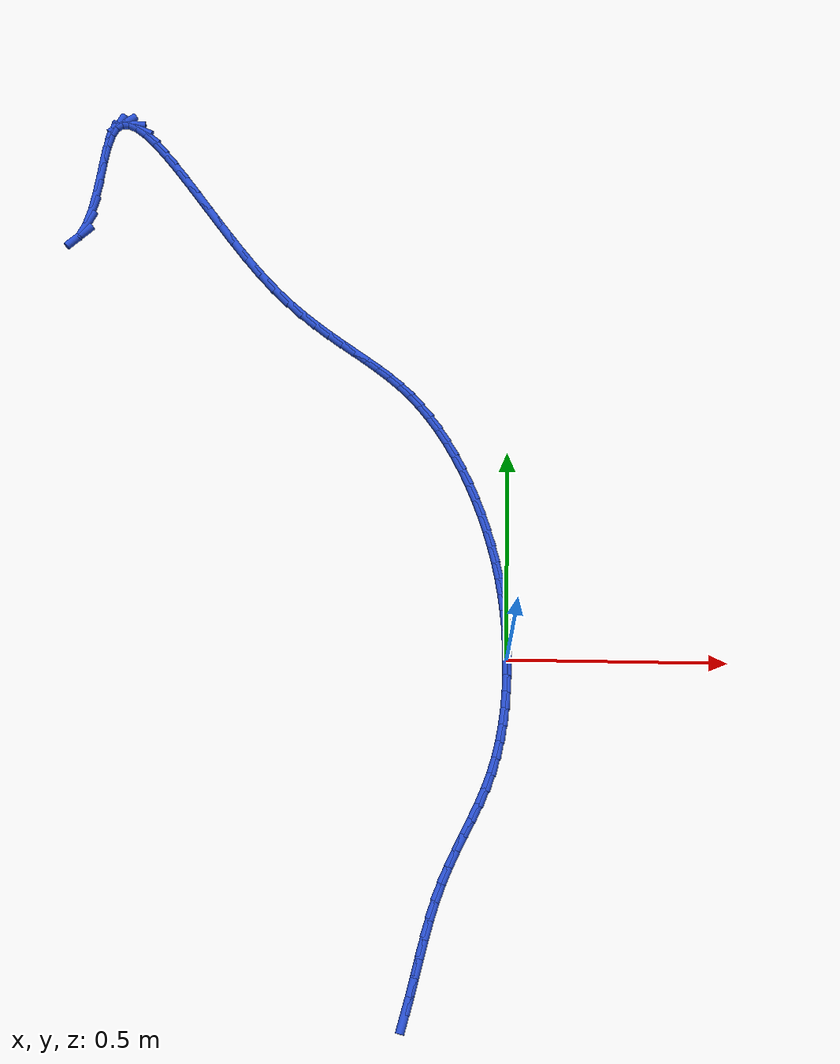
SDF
<sdf version="1.6">
 <world name="default">
  <model name="ground_plane">
   <static>1</static>
   <link name="link">
    <collision name="collision">
     <geometry><plane><normal>0 0 1</normal><size>100 100</size></plane></geometry>
     <surface><friction><ode><mu>100</mu><mu2>50</mu2></ode></friction></surface>
    </collision>
    <visual name="visual">
     <cast_shadows>0</cast_shadows>
     <geometry><plane><normal>0 0 1</normal><size>100 100</size></plane></geometry>
     <material>
      <script><uri>file://media/materials/scripts/gazebo.material</uri><name>Gazebo/WhiteGlow</name></script>
     </material>
    </visual>
   </link>
  </model>
  <model name="line">
   <link name="link_0">
    <pose>-2.6020852139652106e-18 7.632783294297951e-17 0.01 0 1.57 -1.5426805723043262</pose>
    <collision name="collision">
     <geometry><cylinder><radius>0.01</radius><length>0.08</length></cylinder></geometry>
    </collision>
    <visual name="visual">
     <material>
      <script><name>Gazebo/Blue</name><uri>file://media/materials/scripts/gazebo.material</uri></script>
     </material>
     <geometry><cylinder><radius>0.01</radius><length>0.08</length></cylinder></geometry>
    </visual>
   </link>
   <link name="link_1">
    <pose>-0.0010803555094937593 0.03841514631031116 0.01 0 1.57 -1.5085308011320138</pose>
    <collision name="collision">
     <geometry><cylinder><radius>0.01</radius><length>0.08</length></cylinder></geometry>
    </collision>
    <visual name="visual">
     <material>
      <script><name>Gazebo/Blue</name><uri>file://media/materials/scripts/gazebo.material</uri></script>
     </material>
     <geometry><cylinder><radius>0.01</radius><length>0.08</length></cylinder></geometry>
    </visual>
   </link>
   <link name="link_2">
    <pose>-0.0034599829773963036 0.07658315949222319 0.01 0 1.57 -1.473365610789837</pose>
    <collision name="collision">
     <geometry><cylinder><radius>0.01</radius><length>0.08</length></cylinder></geometry>
    </collision>
    <visual name="visual">
     <material>
      <script><name>Gazebo/Blue</name><uri>file://media/materials/scripts/gazebo.material</uri></script>
     </material>
     <geometry><cylinder><radius>0.01</radius><length>0.08</length></cylinder></geometry>
    </visual>
   </link>
   <link name="link_3">
    <pose>-0.007172297588708049 0.11456461583194613 0.01 0 1.57 -1.4374397576351434</pose>
    <collision name="collision">
     <geometry><cylinder><radius>0.01</radius><length>0.08</length></cylinder></geometry>
    </collision>
    <visual name="visual">
     <material>
      <script><name>Gazebo/Blue</name><uri>file://media/materials/scripts/gazebo.material</uri></script>
     </material>
     <geometry><cylinder><radius>0.01</radius><length>0.08</length></cylinder></geometry>
    </visual>
   </link>
   <link name="link_4">
    <pose>-0.012250714528429432 0.15242009161568984 0.01 0 1.57 -1.401027397693487</pose>
    <collision name="collision">
     <geometry><cylinder><radius>0.01</radius><length>0.08</length></cylinder></geometry>
    </collision>
    <visual name="visual">
     <material>
      <script><name>Gazebo/Blue</name><uri>file://media/materials/scripts/gazebo.material</uri></script>
     </material>
     <geometry><cylinder><radius>0.01</radius><length>0.08</length></cylinder></geometry>
    </visual>
   </link>
   <link name="link_5">
    <pose>-0.018728648981560868 0.19021016312966432 0.01 0 1.57 -1.3644134127711403</pose>
    <collision name="collision">
     <geometry><cylinder><radius>0.01</radius><length>0.08</length></cylinder></geometry>
    </collision>
    <visual name="visual">
     <material>
      <script><name>Gazebo/Blue</name><uri>file://media/materials/scripts/gazebo.material</uri></script>
     </material>
     <geometry><cylinder><radius>0.01</radius><length>0.08</length></cylinder></geometry>
    </visual>
   </link>
   <link name="link_6">
    <pose>-0.026639516133102795 0.2279954066600795 0.01 0 1.57 -1.3278839121284285</pose>
    <collision name="collision">
     <geometry><cylinder><radius>0.01</radius><length>0.08</length></cylinder></geometry>
    </collision>
    <visual name="visual">
     <material>
      <script><name>Gazebo/Blue</name><uri>file://media/materials/scripts/gazebo.material</uri></script>
     </material>
     <geometry><cylinder><radius>0.01</radius><length>0.08</length></cylinder></geometry>
    </visual>
   </link>
   <link name="link_7">
    <pose>-0.03601673116805562 0.2658363984931452 0.01 0 1.57 -1.2916774704146423</pose>
    <collision name="collision">
     <geometry><cylinder><radius>0.01</radius><length>0.08</length></cylinder></geometry>
    </collision>
    <visual name="visual">
     <material>
      <script><name>Gazebo/Blue</name><uri>file://media/materials/scripts/gazebo.material</uri></script>
     </material>
     <geometry><cylinder><radius>0.01</radius><length>0.08</length></cylinder></geometry>
    </visual>
   </link>
   <link name="link_8">
    <pose>-0.046885220975244425 0.303758479511365 0.01 0 1.57 -1.2555684967018743</pose>
    <collision name="collision">
     <geometry><cylinder><radius>0.01</radius><length>0.08</length></cylinder></geometry>
    </collision>
    <visual name="visual">
     <material>
      <script><name>Gazebo/Blue</name><uri>file://media/materials/scripts/gazebo.material</uri></script>
     </material>
     <geometry><cylinder><radius>0.01</radius><length>0.08</length></cylinder></geometry>
    </visual>
   </link>
   <link name="link_9">
    <pose>-0.05922336456998789 0.3415937677076539 0.01 0 1.57 -1.2190013547056364</pose>
    <collision name="collision">
     <geometry><cylinder><radius>0.01</radius><length>0.08</length></cylinder></geometry>
    </collision>
    <visual name="visual">
     <material>
      <script><name>Gazebo/Blue</name><uri>file://media/materials/scripts/gazebo.material</uri></script>
     </material>
     <geometry><cylinder><radius>0.01</radius><length>0.08</length></cylinder></geometry>
    </visual>
   </link>
   <link name="link_10">
    <pose>-0.07299366760217361 0.3791084898256602 0.01 0 1.57 -1.1814392259046531</pose>
    <collision name="collision">
     <geometry><cylinder><radius>0.01</radius><length>0.08</length></cylinder></geometry>
    </collision>
    <visual name="visual">
     <material>
      <script><name>Gazebo/Blue</name><uri>file://media/materials/scripts/gazebo.material</uri></script>
     </material>
     <geometry><cylinder><radius>0.01</radius><length>0.08</length></cylinder></geometry>
    </visual>
   </link>
   <link name="link_11">
    <pose>-0.08815862222926604 0.4160688166012099 0.01 0 1.57 -1.1423320725947321</pose>
    <collision name="collision">
     <geometry><cylinder><radius>0.01</radius><length>0.08</length></cylinder></geometry>
    </collision>
    <visual name="visual">
     <material>
      <script><name>Gazebo/Blue</name><uri>file://media/materials/scripts/gazebo.material</uri></script>
     </material>
     <geometry><cylinder><radius>0.01</radius><length>0.08</length></cylinder></geometry>
    </visual>
   </link>
   <link name="link_12">
    <pose>-0.10468072060872946 0.45224091877012906 0.01 0 1.57 -1.1010969514178366</pose>
    <collision name="collision">
     <geometry><cylinder><radius>0.01</radius><length>0.08</length></cylinder></geometry>
    </collision>
    <visual name="visual">
     <material>
      <script><name>Gazebo/Blue</name><uri>file://media/materials/scripts/gazebo.material</uri></script>
     </material>
     <geometry><cylinder><radius>0.01</radius><length>0.08</length></cylinder></geometry>
    </visual>
   </link>
   <link name="link_13">
    <pose>-0.12252245489802817 0.4873909670682433 0.01 0 1.57 -1.0570990799317062</pose>
    <collision name="collision">
     <geometry><cylinder><radius>0.01</radius><length>0.08</length></cylinder></geometry>
    </collision>
    <visual name="visual">
     <material>
      <script><name>Gazebo/Blue</name><uri>file://media/materials/scripts/gazebo.material</uri></script>
     </material>
     <geometry><cylinder><radius>0.01</radius><length>0.08</length></cylinder></geometry>
    </visual>
   </link>
   <link name="link_14">
    <pose>-0.14164631725462662 0.5212851322313792 0.01 0 1.57 -1.0096335910440757</pose>
    <collision name="collision">
     <geometry><cylinder><radius>0.01</radius><length>0.08</length></cylinder></geometry>
    </collision>
    <visual name="visual">
     <material>
      <script><name>Gazebo/Blue</name><uri>file://media/materials/scripts/gazebo.material</uri></script>
     </material>
     <geometry><cylinder><radius>0.01</radius><length>0.08</length></cylinder></geometry>
    </visual>
   </link>
   <link name="link_15">
    <pose>-0.1620147998359891 0.5536895849953622 0.01 0 1.57 -0.957908965155284</pose>
    <collision name="collision">
     <geometry><cylinder><radius>0.01</radius><length>0.08</length></cylinder></geometry>
    </collision>
    <visual name="visual">
     <material>
      <script><name>Gazebo/Blue</name><uri>file://media/materials/scripts/gazebo.material</uri></script>
     </material>
     <geometry><cylinder><radius>0.01</radius><length>0.08</length></cylinder></geometry>
    </visual>
   </link>
   <link name="link_16">
    <pose>-0.1835903947995799 0.5843704960960185 0.01 0 1.57 -0.9010347579570639</pose>
    <collision name="collision">
     <geometry><cylinder><radius>0.01</radius><length>0.08</length></cylinder></geometry>
    </collision>
    <visual name="visual">
     <material>
      <script><name>Gazebo/Blue</name><uri>file://media/materials/scripts/gazebo.material</uri></script>
     </material>
     <geometry><cylinder><radius>0.01</radius><length>0.08</length></cylinder></geometry>
    </visual>
   </link>
   <link name="link_17">
    <pose>-0.2063355943028634 0.6130940362691741 0.01 0 1.57 -0.8380211762480144</pose>
    <collision name="collision">
     <geometry><cylinder><radius>0.01</radius><length>0.08</length></cylinder></geometry>
    </collision>
    <visual name="visual">
     <material>
      <script><name>Gazebo/Blue</name><uri>file://media/materials/scripts/gazebo.material</uri></script>
     </material>
     <geometry><cylinder><radius>0.01</radius><length>0.08</length></cylinder></geometry>
    </visual>
   </link>
   <link name="link_18">
    <pose>-0.230212887760983 0.63962649404409 0.01 0 1.57 -0.7714757591283742</pose>
    <collision name="collision">
     <geometry><cylinder><radius>0.01</radius><length>0.08</length></cylinder></geometry>
    </collision>
    <visual name="visual">
     <material>
      <script><name>Gazebo/Blue</name><uri>file://media/materials/scripts/gazebo.material</uri></script>
     </material>
     <geometry><cylinder><radius>0.01</radius><length>0.08</length></cylinder></geometry>
    </visual>
   </link>
   <link name="link_19">
    <pose>-0.2551807037122628 0.6639085885262989 0.01 0 1.57 -0.7131995504046776</pose>
    <collision name="collision">
     <geometry><cylinder><radius>0.01</radius><length>0.08</length></cylinder></geometry>
    </collision>
    <visual name="visual">
     <material>
      <script><name>Gazebo/Blue</name><uri>file://media/materials/scripts/gazebo.material</uri></script>
     </material>
     <geometry><cylinder><radius>0.01</radius><length>0.08</length></cylinder></geometry>
    </visual>
   </link>
   <link name="link_20">
    <pose>-0.28118526488789186 0.6864053260793336 0.01 0 1.57 -0.6676120803178384</pose>
    <collision name="collision">
     <geometry><cylinder><radius>0.01</radius><length>0.08</length></cylinder></geometry>
    </collision>
    <visual name="visual">
     <material>
      <script><name>Gazebo/Blue</name><uri>file://media/materials/scripts/gazebo.material</uri></script>
     </material>
     <geometry><cylinder><radius>0.01</radius><length>0.08</length></cylinder></geometry>
    </visual>
   </link>
   <link name="link_21">
    <pose>-0.30817051018676056 0.707679812615565 0.01 0 1.57 -0.6361908917310383</pose>
    <collision name="collision">
     <geometry><cylinder><radius>0.01</radius><length>0.08</length></cylinder></geometry>
    </collision>
    <visual name="visual">
     <material>
      <script><name>Gazebo/Blue</name><uri>file://media/materials/scripts/gazebo.material</uri></script>
     </material>
     <geometry><cylinder><radius>0.01</radius><length>0.08</length></cylinder></geometry>
    </visual>
   </link>
   <link name="link_22">
    <pose>-0.33608037850775985 0.7282951540473648 0.01 0 1.57 -0.6194041011593644</pose>
    <collision name="collision">
     <geometry><cylinder><radius>0.01</radius><length>0.08</length></cylinder></geometry>
    </collision>
    <visual name="visual">
     <material>
      <script><name>Gazebo/Blue</name><uri>file://media/materials/scripts/gazebo.material</uri></script>
     </material>
     <geometry><cylinder><radius>0.01</radius><length>0.08</length></cylinder></geometry>
    </visual>
   </link>
   <link name="link_23">
    <pose>-0.3648588087497804 0.7488144562871043 0.01 0 1.57 -0.6168846186867651</pose>
    <collision name="collision">
     <geometry><cylinder><radius>0.01</radius><length>0.08</length></cylinder></geometry>
    </collision>
    <visual name="visual">
     <material>
      <script><name>Gazebo/Blue</name><uri>file://media/materials/scripts/gazebo.material</uri></script>
     </material>
     <geometry><cylinder><radius>0.01</radius><length>0.08</length></cylinder></geometry>
    </visual>
   </link>
   <link name="link_24">
    <pose>-0.39444973981171283 0.769800825247155 0.01 0 1.57 -0.6276255746605878</pose>
    <collision name="collision">
     <geometry><cylinder><radius>0.01</radius><length>0.08</length></cylinder></geometry>
    </collision>
    <visual name="visual">
     <material>
      <script><name>Gazebo/Blue</name><uri>file://media/materials/scripts/gazebo.material</uri></script>
     </material>
     <geometry><cylinder><radius>0.01</radius><length>0.08</length></cylinder></geometry>
    </visual>
   </link>
   <link name="link_25">
    <pose>-0.42479711059244796 0.7918173668398883 0.01 0 1.57 -0.6501466335252065</pose>
    <collision name="collision">
     <geometry><cylinder><radius>0.01</radius><length>0.08</length></cylinder></geometry>
    </collision>
    <visual name="visual">
     <material>
      <script><name>Gazebo/Blue</name><uri>file://media/materials/scripts/gazebo.material</uri></script>
     </material>
     <geometry><cylinder><radius>0.01</radius><length>0.08</length></cylinder></geometry>
    </visual>
   </link>
   <link name="link_26">
    <pose>-0.4558448599908764 0.8154271869776759 0.01 0 1.57 -0.6826281856447373</pose>
    <collision name="collision">
     <geometry><cylinder><radius>0.01</radius><length>0.08</length></cylinder></geometry>
    </collision>
    <visual name="visual">
     <material>
      <script><name>Gazebo/Blue</name><uri>file://media/materials/scripts/gazebo.material</uri></script>
     </material>
     <geometry><cylinder><radius>0.01</radius><length>0.08</length></cylinder></geometry>
    </visual>
   </link>
   <link name="link_27">
    <pose>-0.4875369269058893 0.8411933915728894 0.01 0 1.57 -0.7230325928859175</pose>
    <collision name="collision">
     <geometry><cylinder><radius>0.01</radius><length>0.08</length></cylinder></geometry>
    </collision>
    <visual name="visual">
     <material>
      <script><name>Gazebo/Blue</name><uri>file://media/materials/scripts/gazebo.material</uri></script>
     </material>
     <geometry><cylinder><radius>0.01</radius><length>0.08</length></cylinder></geometry>
    </visual>
   </link>
   <link name="link_28">
    <pose>-0.5198172502363768 0.8696790865378997 0.01 0 1.57 -0.7692302582501211</pose>
    <collision name="collision">
     <geometry><cylinder><radius>0.01</radius><length>0.08</length></cylinder></geometry>
    </collision>
    <visual name="visual">
     <material>
      <script><name>Gazebo/Blue</name><uri>file://media/materials/scripts/gazebo.material</uri></script>
     </material>
     <geometry><cylinder><radius>0.01</radius><length>0.08</length></cylinder></geometry>
    </visual>
   </link>
   <link name="link_29">
    <pose>-0.5526297688812298 0.9014473777850786 0.01 0 1.57 -0.8190387754056678</pose>
    <collision name="collision">
     <geometry><cylinder><radius>0.01</radius><length>0.08</length></cylinder></geometry>
    </collision>
    <visual name="visual">
     <material>
      <script><name>Gazebo/Blue</name><uri>file://media/materials/scripts/gazebo.material</uri></script>
     </material>
     <geometry><cylinder><radius>0.01</radius><length>0.08</length></cylinder></geometry>
    </visual>
   </link>
   <link name="link_30">
    <pose>-0.5859174586925855 0.937053574789607 0.01 0 1.57 -0.8643724727050911</pose>
    <collision name="collision">
     <geometry><cylinder><radius>0.01</radius><length>0.08</length></cylinder></geometry>
    </collision>
    <visual name="visual">
     <material>
      <script><name>Gazebo/Blue</name><uri>file://media/materials/scripts/gazebo.material</uri></script>
     </material>
     <geometry><cylinder><radius>0.01</radius><length>0.08</length></cylinder></geometry>
    </visual>
   </link>
   <link name="link_31">
    <pose>-0.6195510498346447 0.9764681151437421 0.01 0 1.57 -0.8966434586433389</pose>
    <collision name="collision">
     <geometry><cylinder><radius>0.01</radius><length>0.08</length></cylinder></geometry>
    </collision>
    <visual name="visual">
     <material>
      <script><name>Gazebo/Blue</name><uri>file://media/materials/scripts/gazebo.material</uri></script>
     </material>
     <geometry><cylinder><radius>0.01</radius><length>0.08</length></cylinder></geometry>
    </visual>
   </link>
   <link name="link_32">
    <pose>-0.6532800736706355 1.018680259943836 0.01 0 1.57 -0.9181249196915459</pose>
    <collision name="collision">
     <geometry><cylinder><radius>0.01</radius><length>0.08</length></cylinder></geometry>
    </collision>
    <visual name="visual">
     <material>
      <script><name>Gazebo/Blue</name><uri>file://media/materials/scripts/gazebo.material</uri></script>
     </material>
     <geometry><cylinder><radius>0.01</radius><length>0.08</length></cylinder></geometry>
    </visual>
   </link>
   <link name="link_33">
    <pose>-0.6868424787102823 1.0625855001868465 0.01 0 1.57 -0.9307076820168094</pose>
    <collision name="collision">
     <geometry><cylinder><radius>0.01</radius><length>0.08</length></cylinder></geometry>
    </collision>
    <visual name="visual">
     <material>
      <script><name>Gazebo/Blue</name><uri>file://media/materials/scripts/gazebo.material</uri></script>
     </material>
     <geometry><cylinder><radius>0.01</radius><length>0.08</length></cylinder></geometry>
    </visual>
   </link>
   <link name="link_34">
    <pose>-0.7199762134633086 1.107079326869731 0.01 0 1.57 -0.9352062492344857</pose>
    <collision name="collision">
     <geometry><cylinder><radius>0.01</radius><length>0.08</length></cylinder></geometry>
    </collision>
    <visual name="visual">
     <material>
      <script><name>Gazebo/Blue</name><uri>file://media/materials/scripts/gazebo.material</uri></script>
     </material>
     <geometry><cylinder><radius>0.01</radius><length>0.08</length></cylinder></geometry>
    </visual>
   </link>
   <link name="link_35">
    <pose>-0.752419226439439 1.1510572309894462 0.01 0 1.57 -0.9315068500089022</pose>
    <collision name="collision">
     <geometry><cylinder><radius>0.01</radius><length>0.08</length></cylinder></geometry>
    </collision>
    <visual name="visual">
     <material>
      <script><name>Gazebo/Blue</name><uri>file://media/materials/scripts/gazebo.material</uri></script>
     </material>
     <geometry><cylinder><radius>0.01</radius><length>0.08</length></cylinder></geometry>
    </visual>
   </link>
   <link name="link_36">
    <pose>-0.7839094661483975 1.1934147035429505 0.01 0 1.57 -0.9184564366562011</pose>
    <collision name="collision">
     <geometry><cylinder><radius>0.01</radius><length>0.08</length></cylinder></geometry>
    </collision>
    <visual name="visual">
     <material>
      <script><name>Gazebo/Blue</name><uri>file://media/materials/scripts/gazebo.material</uri></script>
     </material>
     <geometry><cylinder><radius>0.01</radius><length>0.08</length></cylinder></geometry>
    </visual>
   </link>
   <link name="link_37">
    <pose>-0.814184881099908 1.233047235527201 0.01 0 1.57 -0.8934029825798333</pose>
    <collision name="collision">
     <geometry><cylinder><radius>0.01</radius><length>0.08</length></cylinder></geometry>
    </collision>
    <visual name="visual">
     <material>
      <script><name>Gazebo/Blue</name><uri>file://media/materials/scripts/gazebo.material</uri></script>
     </material>
     <geometry><cylinder><radius>0.01</radius><length>0.08</length></cylinder></geometry>
    </visual>
   </link>
   <link name="link_38">
    <pose>-0.8429834198036946 1.2688503179391553 0.01 0 1.57 -0.8510656682763901</pose>
    <collision name="collision">
     <geometry><cylinder><radius>0.01</radius><length>0.08</length></cylinder></geometry>
    </collision>
    <visual name="visual">
     <material>
      <script><name>Gazebo/Blue</name><uri>file://media/materials/scripts/gazebo.material</uri></script>
     </material>
     <geometry><cylinder><radius>0.01</radius><length>0.08</length></cylinder></geometry>
    </visual>
   </link>
   <link name="link_39">
    <pose>-0.8700430307694814 1.2997194417757705 0.01 0 1.57 -0.7808285673652635</pose>
    <collision name="collision">
     <geometry><cylinder><radius>0.01</radius><length>0.08</length></cylinder></geometry>
    </collision>
    <visual name="visual">
     <material>
      <script><name>Gazebo/Blue</name><uri>file://media/materials/scripts/gazebo.material</uri></script>
     </material>
     <geometry><cylinder><radius>0.01</radius><length>0.08</length></cylinder></geometry>
    </visual>
   </link>
   <link name="link_40">
    <pose>-0.8951016625069927 1.3245500980340046 0.01 0 1.57 -0.6598877897646162</pose>
    <collision name="collision">
     <geometry><cylinder><radius>0.01</radius><length>0.08</length></cylinder></geometry>
    </collision>
    <visual name="visual">
     <material>
      <script><name>Gazebo/Blue</name><uri>file://media/materials/scripts/gazebo.material</uri></script>
     </material>
     <geometry><cylinder><radius>0.01</radius><length>0.08</length></cylinder></geometry>
    </visual>
   </link>
   <link name="link_41">
    <pose>-0.9178972635259522 1.342237777710814 0.01 0 1.57 -0.43584172484073064</pose>
    <collision name="collision">
     <geometry><cylinder><radius>0.01</radius><length>0.08</length></cylinder></geometry>
    </collision>
    <visual name="visual">
     <material>
      <script><name>Gazebo/Blue</name><uri>file://media/materials/scripts/gazebo.material</uri></script>
     </material>
     <geometry><cylinder><radius>0.01</radius><length>0.08</length></cylinder></geometry>
    </visual>
   </link>
   <link name="link_42">
    <pose>-0.9381677823360841 1.3516779718031575 0.01 0 1.57 -0.0050447185182563034</pose>
    <collision name="collision">
     <geometry><cylinder><radius>0.01</radius><length>0.08</length></cylinder></geometry>
    </collision>
    <visual name="visual">
     <material>
      <script><name>Gazebo/Blue</name><uri>file://media/materials/scripts/gazebo.material</uri></script>
     </material>
     <geometry><cylinder><radius>0.01</radius><length>0.08</length></cylinder></geometry>
    </visual>
   </link>
   <link name="link_43">
    <pose>-0.9556511674471128 1.351766171307992 0.01 0 1.57 0.6229125261429215</pose>
    <collision name="collision">
     <geometry><cylinder><radius>0.01</radius><length>0.08</length></cylinder></geometry>
    </collision>
    <visual name="visual">
     <material>
      <script><name>Gazebo/Blue</name><uri>file://media/materials/scripts/gazebo.material</uri></script>
     </material>
     <geometry><cylinder><radius>0.01</radius><length>0.08</length></cylinder></geometry>
    </visual>
   </link>
   <link name="link_44">
    <pose>-0.9700853673687616 1.3413978672222746 0.01 0 1.57 1.0995372211359704</pose>
    <collision name="collision">
     <geometry><cylinder><radius>0.01</radius><length>0.08</length></cylinder></geometry>
    </collision>
    <visual name="visual">
     <material>
      <script><name>Gazebo/Blue</name><uri>file://media/materials/scripts/gazebo.material</uri></script>
     </material>
     <geometry><cylinder><radius>0.01</radius><length>0.08</length></cylinder></geometry>
    </visual>
   </link>
   <link name="link_45">
    <pose>-0.9812284907543273 1.3195293486762585 0.01 0 1.57 1.322700077362954</pose>
    <collision name="collision">
     <geometry><cylinder><radius>0.01</radius><length>0.08</length></cylinder></geometry>
    </collision>
    <visual name="visual">
     <material>
      <script><name>Gazebo/Blue</name><uri>file://media/materials/scripts/gazebo.material</uri></script>
     </material>
     <geometry><cylinder><radius>0.01</radius><length>0.08</length></cylinder></geometry>
    </visual>
   </link>
   <link name="link_46">
    <pose>-0.9894662387985999 1.287009572620604 0.01 0 1.57 1.4112634199327305</pose>
    <collision name="collision">
     <geometry><cylinder><radius>0.01</radius><length>0.08</length></cylinder></geometry>
    </collision>
    <visual name="visual">
     <material>
      <script><name>Gazebo/Blue</name><uri>file://media/materials/scripts/gazebo.material</uri></script>
     </material>
     <geometry><cylinder><radius>0.01</radius><length>0.08</length></cylinder></geometry>
    </visual>
   </link>
   <link name="link_47">
    <pose>-0.9959192518571268 1.2469038953535598 0.01 0 1.57 1.4405117028704824</pose>
    <collision name="collision">
     <geometry><cylinder><radius>0.01</radius><length>0.08</length></cylinder></geometry>
    </collision>
    <visual name="visual">
     <material>
      <script><name>Gazebo/Blue</name><uri>file://media/materials/scripts/gazebo.material</uri></script>
     </material>
     <geometry><cylinder><radius>0.01</radius><length>0.08</length></cylinder></geometry>
    </visual>
   </link>
   <link name="link_48">
    <pose>-1.0017499676841224 1.2024037240522543 0.01 0 1.57 1.4322927167606936</pose>
    <collision name="collision">
     <geometry><cylinder><radius>0.01</radius><length>0.08</length></cylinder></geometry>
    </collision>
    <visual name="visual">
     <material>
      <script><name>Gazebo/Blue</name><uri>file://media/materials/scripts/gazebo.material</uri></script>
     </material>
     <geometry><cylinder><radius>0.01</radius><length>0.08</length></cylinder></geometry>
    </visual>
   </link>
   <link name="link_49">
    <pose>-1.0081208240337995 1.156700465893815 0.01 0 1.57 1.3881704513991</pose>
    <collision name="collision">
     <geometry><cylinder><radius>0.01</radius><length>0.08</length></cylinder></geometry>
    </collision>
    <visual name="visual">
     <material>
      <script><name>Gazebo/Blue</name><uri>file://media/materials/scripts/gazebo.material</uri></script>
     </material>
     <geometry><cylinder><radius>0.01</radius><length>0.08</length></cylinder></geometry>
    </visual>
   </link>
   <link name="link_50">
    <pose>-1.016194258660373 1.112985528055369 0.01 0 1.57 1.2942155477918444</pose>
    <collision name="collision">
     <geometry><cylinder><radius>0.01</radius><length>0.08</length></cylinder></geometry>
    </collision>
    <visual name="visual">
     <material>
      <script><name>Gazebo/Blue</name><uri>file://media/materials/scripts/gazebo.material</uri></script>
     </material>
     <geometry><cylinder><radius>0.01</radius><length>0.08</length></cylinder></geometry>
    </visual>
   </link>
   <link name="link_51">
    <pose>-1.0271327093180562 1.0744503177140448 0.01 0 1.57 1.1102335037299869</pose>
    <collision name="collision">
     <geometry><cylinder><radius>0.01</radius><length>0.08</length></cylinder></geometry>
    </collision>
    <visual name="visual">
     <material>
      <script><name>Gazebo/Blue</name><uri>file://media/materials/scripts/gazebo.material</uri></script>
     </material>
     <geometry><cylinder><radius>0.01</radius><length>0.08</length></cylinder></geometry>
    </visual>
   </link>
   <link name="link_52">
    <pose>-1.0420986137610633 1.0442862420469694 0.01 0 1.57 0.7468468014623375</pose>
    <collision name="collision">
     <geometry><cylinder><radius>0.01</radius><length>0.08</length></cylinder></geometry>
    </collision>
    <visual name="visual">
     <material>
      <script><name>Gazebo/Blue</name><uri>file://media/materials/scripts/gazebo.material</uri></script>
     </material>
     <geometry><cylinder><radius>0.01</radius><length>0.08</length></cylinder></geometry>
    </visual>
   </link>
   <link name="link_209">
    <pose>-0.21843581705058845 -0.7938253757944554 0.01 0 1.57 1.3164308197023729</pose>
    <collision name="collision">
     <geometry><cylinder><radius>0.01</radius><length>0.08</length></cylinder></geometry>
    </collision>
    <visual name="visual">
     <material>
      <script><name>Gazebo/Blue</name><uri>file://media/materials/scripts/gazebo.material</uri></script>
     </material>
     <geometry><cylinder><radius>0.01</radius><length>0.08</length></cylinder></geometry>
    </visual>
   </link>
   <link name="link_210">
    <pose>-0.208071348533938 -0.7539616177058276 0.01 0 1.57 1.3334954861690713</pose>
    <collision name="collision">
     <geometry><cylinder><radius>0.01</radius><length>0.08</length></cylinder></geometry>
    </collision>
    <visual name="visual">
     <material>
      <script><name>Gazebo/Blue</name><uri>file://media/materials/scripts/gazebo.material</uri></script>
     </material>
     <geometry><cylinder><radius>0.01</radius><length>0.08</length></cylinder></geometry>
    </visual>
   </link>
   <link name="link_211">
    <pose>-0.1982092452327921 -0.7131851613504497 0.01 0 1.57 1.3385154456844561</pose>
    <collision name="collision">
     <geometry><cylinder><radius>0.01</radius><length>0.08</length></cylinder></geometry>
    </collision>
    <visual name="visual">
     <material>
      <script><name>Gazebo/Blue</name><uri>file://media/materials/scripts/gazebo.material</uri></script>
     </material>
     <geometry><cylinder><radius>0.01</radius><length>0.08</length></cylinder></geometry>
    </visual>
   </link>
   <link name="link_212">
    <pose>-0.18845627148885113 -0.6719551892353793 0.01 0 1.57 1.3319683866008865</pose>
    <collision name="collision">
     <geometry><cylinder><radius>0.01</radius><length>0.08</length></cylinder></geometry>
    </collision>
    <visual name="visual">
     <material>
      <script><name>Gazebo/Blue</name><uri>file://media/materials/scripts/gazebo.material</uri></script>
     </material>
     <geometry><cylinder><radius>0.01</radius><length>0.08</length></cylinder></geometry>
    </visual>
   </link>
   <link name="link_213">
    <pose>-0.17841919164381587 -0.6307308838676751 0.01 0 1.57 1.3137422610972733</pose>
    <collision name="collision">
     <geometry><cylinder><radius>0.01</radius><length>0.08</length></cylinder></geometry>
    </collision>
    <visual name="visual">
     <material>
      <script><name>Gazebo/Blue</name><uri>file://media/materials/scripts/gazebo.material</uri></script>
     </material>
     <geometry><cylinder><radius>0.01</radius><length>0.08</length></cylinder></geometry>
    </visual>
   </link>
   <link name="link_214">
    <pose>-0.16770477003938694 -0.589971427754396 0.01 0 1.57 1.2831583921143348</pose>
    <collision name="collision">
     <geometry><cylinder><radius>0.01</radius><length>0.08</length></cylinder></geometry>
    </collision>
    <visual name="visual">
     <material>
      <script><name>Gazebo/Blue</name><uri>file://media/materials/scripts/gazebo.material</uri></script>
     </material>
     <geometry><cylinder><radius>0.01</radius><length>0.08</length></cylinder></geometry>
    </visual>
   </link>
   <link name="link_215">
    <pose>-0.15591977101726467 -0.5501360034025995 0.01 0 1.57 1.2390270188266617</pose>
    <collision name="collision">
     <geometry><cylinder><radius>0.01</radius><length>0.08</length></cylinder></geometry>
    </collision>
    <visual name="visual">
     <material>
      <script><name>Gazebo/Blue</name><uri>file://media/materials/scripts/gazebo.material</uri></script>
     </material>
     <geometry><cylinder><radius>0.01</radius><length>0.08</length></cylinder></geometry>
    </visual>
   </link>
   <link name="link_216">
    <pose>-0.14267241950621273 -0.5116824829679671 0.01 0 1.57 1.1884248439183294</pose>
    <collision name="collision">
     <geometry><cylinder><radius>0.01</radius><length>0.08</length></cylinder></geometry>
    </collision>
    <visual name="visual">
     <material>
      <script><name>Gazebo/Blue</name><uri>file://media/materials/scripts/gazebo.material</uri></script>
     </material>
     <geometry><cylinder><radius>0.01</radius><length>0.08</length></cylinder></geometry>
    </visual>
   </link>
   <link name="link_217">
    <pose>-0.12784776865132053 -0.4748203848829079 0.01 0 1.57 1.1504215132421167</pose>
    <collision name="collision">
     <geometry><cylinder><radius>0.01</radius><length>0.08</length></cylinder></geometry>
    </collision>
    <visual name="visual">
     <material>
      <script><name>Gazebo/Blue</name><uri>file://media/materials/scripts/gazebo.material</uri></script>
     </material>
     <geometry><cylinder><radius>0.01</radius><length>0.08</length></cylinder></geometry>
    </visual>
   </link>
   <link name="link_218">
    <pose>-0.11193312494305382 -0.43921892188895784 0.01 0 1.57 1.128865591879041</pose>
    <collision name="collision">
     <geometry><cylinder><radius>0.01</radius><length>0.08</length></cylinder></geometry>
    </collision>
    <visual name="visual">
     <material>
      <script><name>Gazebo/Blue</name><uri>file://media/materials/scripts/gazebo.material</uri></script>
     </material>
     <geometry><cylinder><radius>0.01</radius><length>0.08</length></cylinder></geometry>
    </visual>
   </link>
   <link name="link_219">
    <pose>-0.09549495112090667 -0.4044762924740216 0.01 0 1.57 1.124743438027624</pose>
    <collision name="collision">
     <geometry><cylinder><radius>0.01</radius><length>0.08</length></cylinder></geometry>
    </collision>
    <visual name="visual">
     <material>
      <script><name>Gazebo/Blue</name><uri>file://media/materials/scripts/gazebo.material</uri></script>
     </material>
     <geometry><cylinder><radius>0.01</radius><length>0.08</length></cylinder></geometry>
    </visual>
   </link>
   <link name="link_220">
    <pose>-0.0790997099243742 -0.37019069512600694 0.01 0 1.57 1.1386965036314383</pose>
    <collision name="collision">
     <geometry><cylinder><radius>0.01</radius><length>0.08</length></cylinder></geometry>
    </collision>
    <visual name="visual">
     <material>
      <script><name>Gazebo/Blue</name><uri>file://media/materials/scripts/gazebo.material</uri></script>
     </material>
     <geometry><cylinder><radius>0.01</radius><length>0.08</length></cylinder></geometry>
    </visual>
   </link>
   <link name="link_221">
    <pose>-0.06331386409295048 -0.3359603283328184 0.01 0 1.57 1.1710148842727033</pose>
    <collision name="collision">
     <geometry><cylinder><radius>0.01</radius><length>0.08</length></cylinder></geometry>
    </collision>
    <visual name="visual">
     <material>
      <script><name>Gazebo/Blue</name><uri>file://media/materials/scripts/gazebo.material</uri></script>
     </material>
     <geometry><cylinder><radius>0.01</radius><length>0.08</length></cylinder></geometry>
    </visual>
   </link>
   <link name="link_222">
    <pose>-0.04870387636612986 -0.3013833905823619 0.01 0 1.57 1.2214685040001998</pose>
    <collision name="collision">
     <geometry><cylinder><radius>0.01</radius><length>0.08</length></cylinder></geometry>
    </collision>
    <visual name="visual">
     <material>
      <script><name>Gazebo/Blue</name><uri>file://media/materials/scripts/gazebo.material</uri></script>
     </material>
     <geometry><cylinder><radius>0.01</radius><length>0.08</length></cylinder></geometry>
    </visual>
   </link>
   <link name="link_223">
    <pose>-0.03583607537766449 -0.2660581947153341 0.01 0 1.57 1.2840196392095868</pose>
    <collision name="collision">
     <geometry><cylinder><radius>0.01</radius><length>0.08</length></cylinder></geometry>
    </collision>
    <visual name="visual">
     <material>
      <script><name>Gazebo/Blue</name><uri>file://media/materials/scripts/gazebo.material</uri></script>
     </material>
     <geometry><cylinder><radius>0.01</radius><length>0.08</length></cylinder></geometry>
    </visual>
   </link>
   <link name="link_224">
    <pose>-0.02511901903356747 -0.22971758564364506 0.01 0 1.57 1.3432534943970904</pose>
    <collision name="collision">
     <geometry><cylinder><radius>0.01</radius><length>0.08</length></cylinder></geometry>
    </collision>
    <visual name="visual">
     <material>
      <script><name>Gazebo/Blue</name><uri>file://media/materials/scripts/gazebo.material</uri></script>
     </material>
     <geometry><cylinder><radius>0.01</radius><length>0.08</length></cylinder></geometry>
    </visual>
   </link>
   <link name="link_225">
    <pose>-0.01649861024020447 -0.19248891704676518 0.01 0 1.57 1.3968681303331236</pose>
    <collision name="collision">
     <geometry><cylinder><radius>0.01</radius><length>0.08</length></cylinder></geometry>
    </collision>
    <visual name="visual">
     <material>
      <script><name>Gazebo/Blue</name><uri>file://media/materials/scripts/gazebo.material</uri></script>
     </material>
     <geometry><cylinder><radius>0.01</radius><length>0.08</length></cylinder></geometry>
    </visual>
   </link>
   <link name="link_226">
    <pose>-0.00983638386802121 -0.15457148374799434 0.01 0 1.57 1.4453738161987926</pose>
    <collision name="collision">
     <geometry><cylinder><radius>0.01</radius><length>0.08</length></cylinder></geometry>
    </collision>
    <visual name="visual">
     <material>
      <script><name>Gazebo/Blue</name><uri>file://media/materials/scripts/gazebo.material</uri></script>
     </material>
     <geometry><cylinder><radius>0.01</radius><length>0.08</length></cylinder></geometry>
    </visual>
   </link>
   <link name="link_227">
    <pose>-0.004993874787463414 -0.11616458057063254 0.01 0 1.57 1.4892849384170144</pose>
    <collision name="collision">
     <geometry><cylinder><radius>0.01</radius><length>0.08</length></cylinder></geometry>
    </collision>
    <visual name="visual">
     <material>
      <script><name>Gazebo/Blue</name><uri>file://media/materials/scripts/gazebo.material</uri></script>
     </material>
     <geometry><cylinder><radius>0.01</radius><length>0.08</length></cylinder></geometry>
    </visual>
   </link>
   <link name="link_228">
    <pose>-0.001832617868976738 -0.07746750233797874 0.01 0 1.57 1.529094426462864</pose>
    <collision name="collision">
     <geometry><cylinder><radius>0.01</radius><length>0.08</length></cylinder></geometry>
    </collision>
    <visual name="visual">
     <material>
      <script><name>Gazebo/Blue</name><uri>file://media/materials/scripts/gazebo.material</uri></script>
     </material>
     <geometry><cylinder><radius>0.01</radius><length>0.08</length></cylinder></geometry>
    </visual>
   </link>
   <link name="link_229">
    <pose>-0.00021414798300706294 -0.03867954387333492 0.01 0 1.57 1.5652599172732478</pose>
    <collision name="collision">
     <geometry><cylinder><radius>0.01</radius><length>0.08</length></cylinder></geometry>
    </collision>
    <visual name="visual">
     <material>
      <script><name>Gazebo/Blue</name><uri>file://media/materials/scripts/gazebo.material</uri></script>
     </material>
     <geometry><cylinder><radius>0.01</radius><length>0.08</length></cylinder></geometry>
    </visual>
   </link>
   <link name="link_230">
    <pose>-1.214306433183765e-17 -1.1102230246251565e-16 0.01 0 1.57 -1.543394833753405</pose>
    <collision name="collision">
     <geometry><cylinder><radius>0.01</radius><length>0.08</length></cylinder></geometry>
    </collision>
    <visual name="visual">
     <material>
      <script><name>Gazebo/Blue</name><uri>file://media/materials/scripts/gazebo.material</uri></script>
     </material>
     <geometry><cylinder><radius>0.01</radius><length>0.08</length></cylinder></geometry>
    </visual>
   </link>
   <link name="link_231">
    <pose>-0.0010517087904013045 0.03837183445872577 0.01 0 1.57 -1.5133102768790208</pose>
    <collision name="collision">
     <geometry><cylinder><radius>0.01</radius><length>0.08</length></cylinder></geometry>
    </collision>
    <visual name="visual">
     <material>
      <script><name>Gazebo/Blue</name><uri>file://media/materials/scripts/gazebo.material</uri></script>
     </material>
     <geometry><cylinder><radius>0.01</radius><length>0.08</length></cylinder></geometry>
    </visual>
   </link>
   <link name="link_232">
    <pose>-0.0032308092246566607 0.0762366646795427 0.01 0 1.57 -1.5284429894203555</pose>
    <collision name="collision">
     <geometry><cylinder><radius>0.01</radius><length>0.08</length></cylinder></geometry>
    </collision>
    <visual name="visual">
     <material>
      <script><name>Gazebo/Blue</name><uri>file://media/materials/scripts/gazebo.material</uri></script>
     </material>
     <geometry><cylinder><radius>0.01</radius><length>0.08</length></cylinder></geometry>
    </visual>
   </link>
  </model>
 </world>
</sdf>
